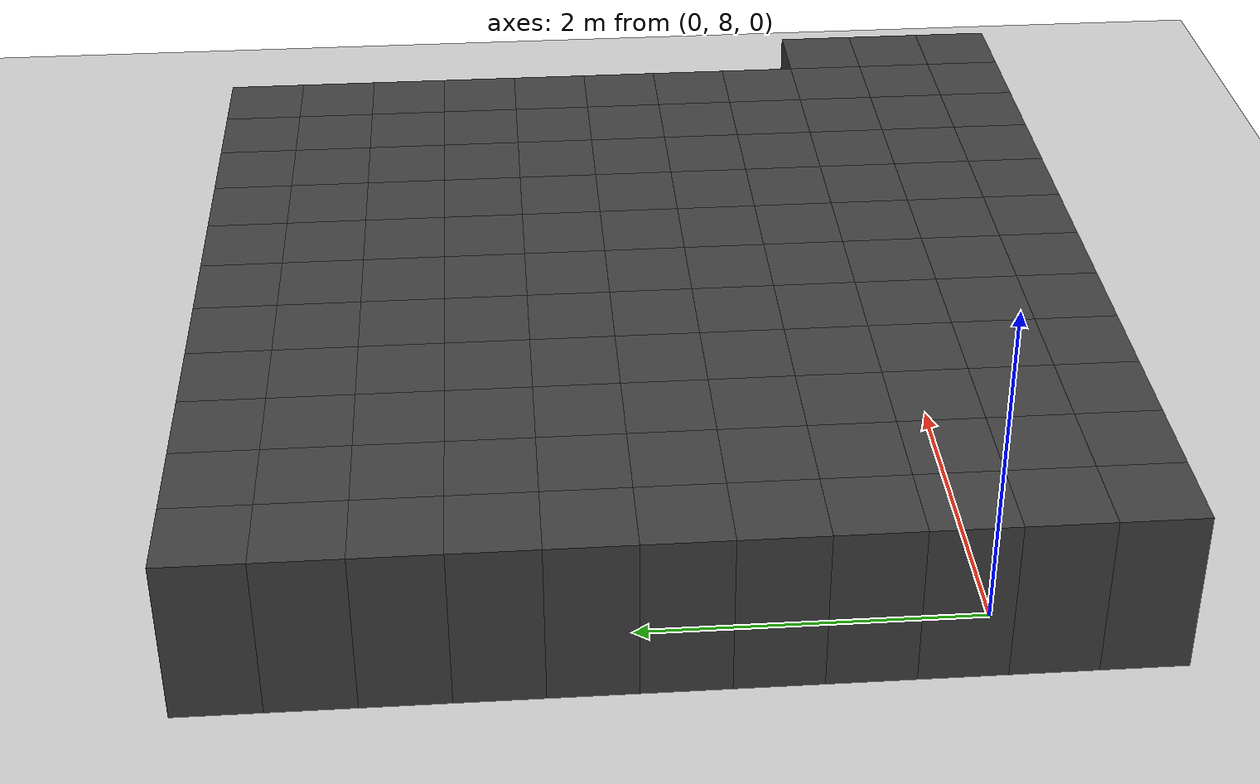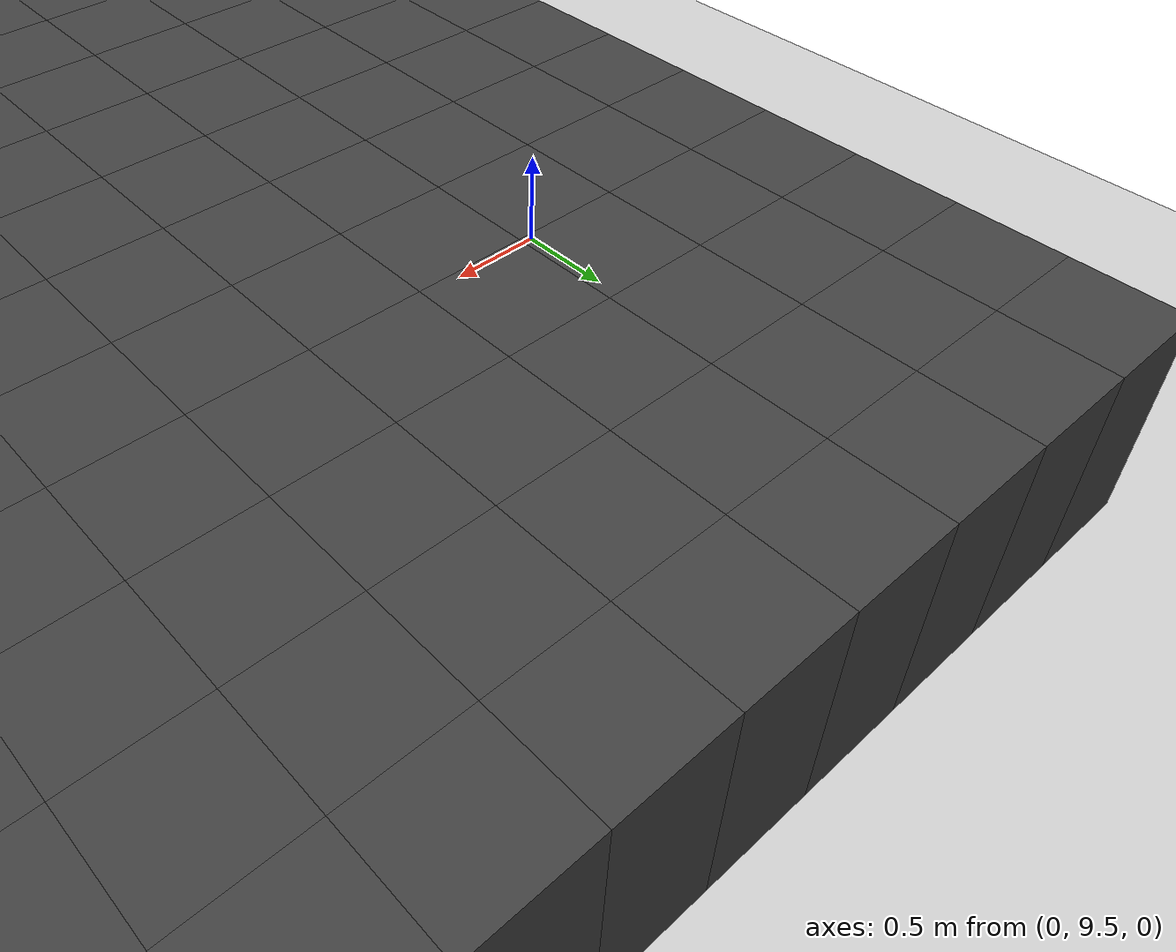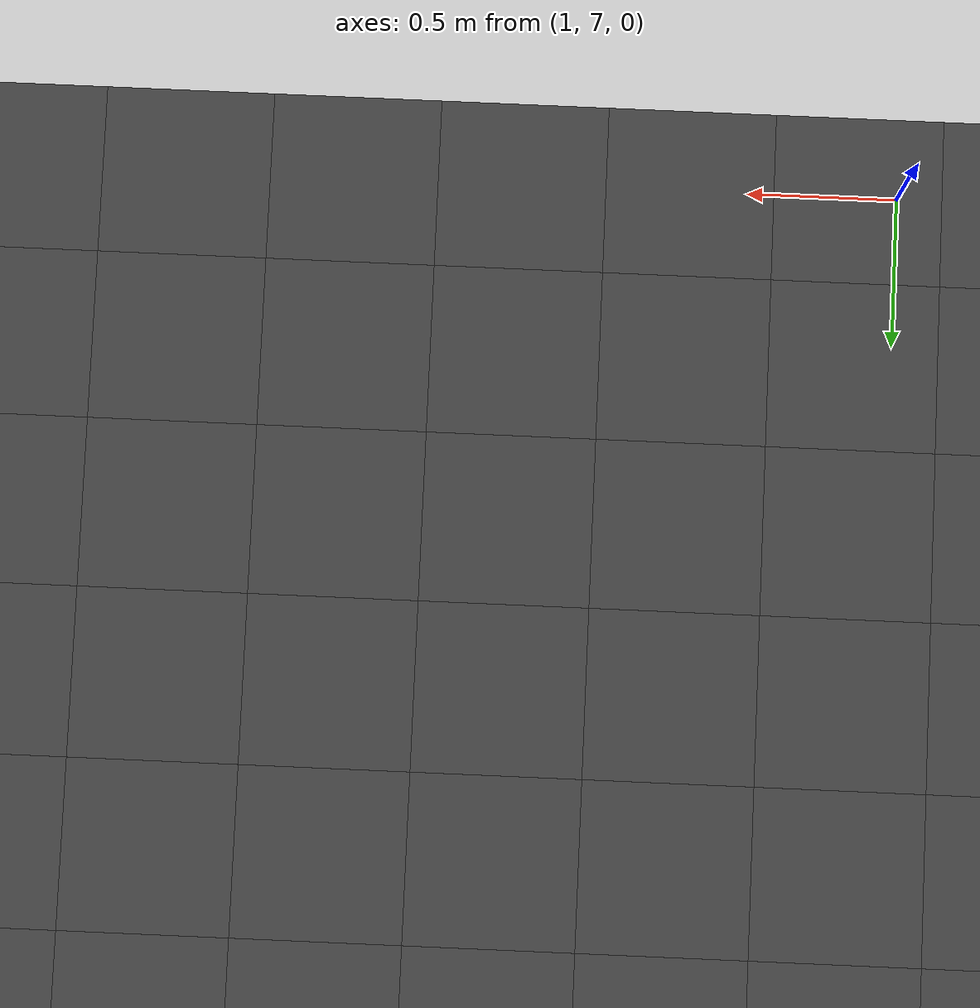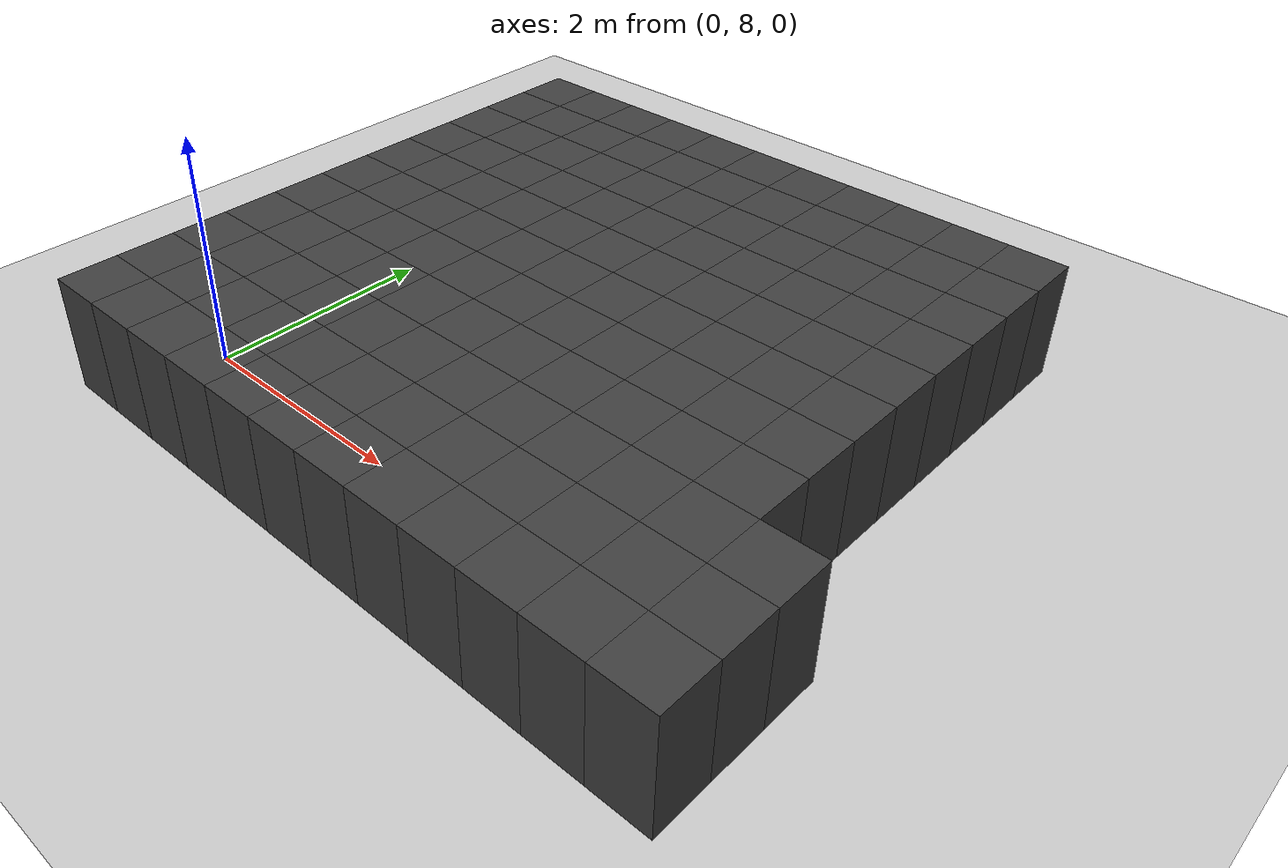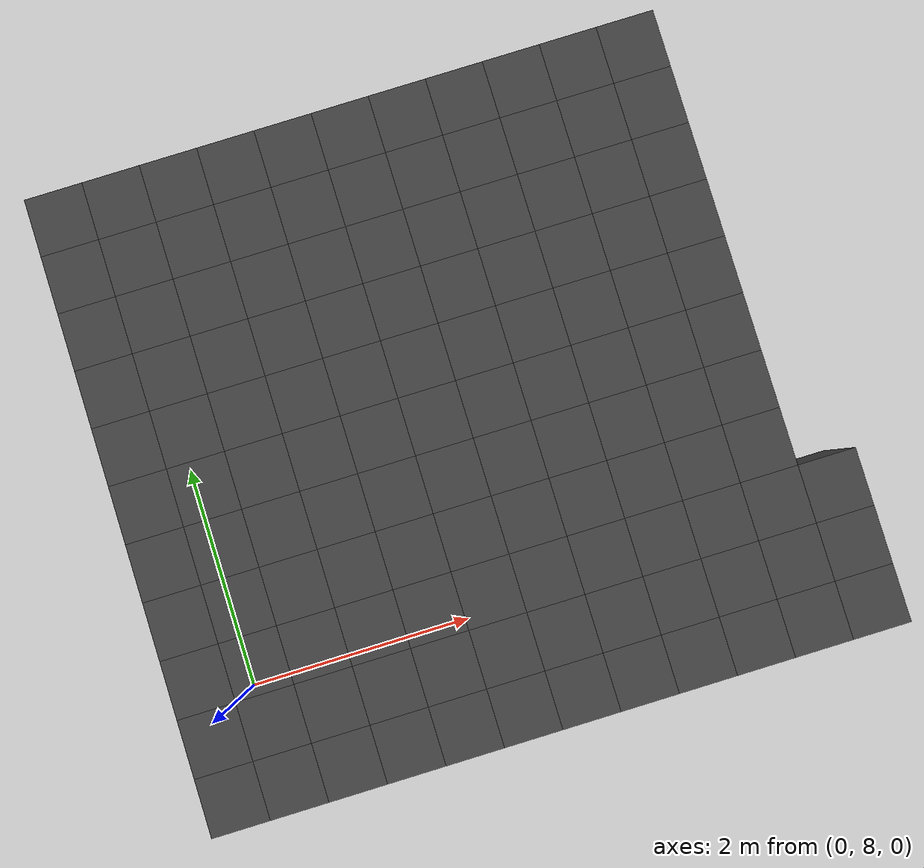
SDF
<sdf version="1.7">
 <world name="map_13364">
  <model name="ground_plane">
   <static>true</static>
   <link name="link">
    <collision name="collision">
     <geometry><plane><normal>0 0 1</normal><size>200 200</size></plane></geometry>
    </collision>
    <visual name="visual">
     <geometry><plane><normal>0 0 1</normal><size>200 200</size></plane></geometry>
     <material><ambient>0.8 0.8 0.8 1</ambient><diffuse>0.8 0.8 0.8 1</diffuse></material>
    </visual>
   </link>
  </model>
  <model name="maze_environment">
   <static>true</static>
   <link name="wall_24">
    <pose>-0.250 12.250 0.500 0 0 0</pose>
    <collision name="col"><geometry><box><size>0.5 0.5 1.0</size></box></geometry></collision>
    <visual name="vis">
     <geometry><box><size>0.5 0.5 1.0</size></box></geometry>
     <material><ambient>0.15 0.15 0.15 1</ambient><diffuse>0.25 0.25 0.25 1</diffuse></material>
    </visual>
   </link>
   <link name="wall_25">
    <pose>0.250 12.250 0.500 0 0 0</pose>
    <collision name="col"><geometry><box><size>0.5 0.5 1.0</size></box></geometry></collision>
    <visual name="vis">
     <geometry><box><size>0.5 0.5 1.0</size></box></geometry>
     <material><ambient>0.15 0.15 0.15 1</ambient><diffuse>0.25 0.25 0.25 1</diffuse></material>
    </visual>
   </link>
   <link name="wall_26">
    <pose>0.750 12.250 0.500 0 0 0</pose>
    <collision name="col"><geometry><box><size>0.5 0.5 1.0</size></box></geometry></collision>
    <visual name="vis">
     <geometry><box><size>0.5 0.5 1.0</size></box></geometry>
     <material><ambient>0.15 0.15 0.15 1</ambient><diffuse>0.25 0.25 0.25 1</diffuse></material>
    </visual>
   </link>
   <link name="wall_27">
    <pose>1.250 12.250 0.500 0 0 0</pose>
    <collision name="col"><geometry><box><size>0.5 0.5 1.0</size></box></geometry></collision>
    <visual name="vis">
     <geometry><box><size>0.5 0.5 1.0</size></box></geometry>
     <material><ambient>0.15 0.15 0.15 1</ambient><diffuse>0.25 0.25 0.25 1</diffuse></material>
    </visual>
   </link>
   <link name="wall_28">
    <pose>1.750 12.250 0.500 0 0 0</pose>
    <collision name="col"><geometry><box><size>0.5 0.5 1.0</size></box></geometry></collision>
    <visual name="vis">
     <geometry><box><size>0.5 0.5 1.0</size></box></geometry>
     <material><ambient>0.15 0.15 0.15 1</ambient><diffuse>0.25 0.25 0.25 1</diffuse></material>
    </visual>
   </link>
   <link name="wall_29">
    <pose>2.250 12.250 0.500 0 0 0</pose>
    <collision name="col"><geometry><box><size>0.5 0.5 1.0</size></box></geometry></collision>
    <visual name="vis">
     <geometry><box><size>0.5 0.5 1.0</size></box></geometry>
     <material><ambient>0.15 0.15 0.15 1</ambient><diffuse>0.25 0.25 0.25 1</diffuse></material>
    </visual>
   </link>
   <link name="wall_30">
    <pose>2.750 12.250 0.500 0 0 0</pose>
    <collision name="col"><geometry><box><size>0.5 0.5 1.0</size></box></geometry></collision>
    <visual name="vis">
     <geometry><box><size>0.5 0.5 1.0</size></box></geometry>
     <material><ambient>0.15 0.15 0.15 1</ambient><diffuse>0.25 0.25 0.25 1</diffuse></material>
    </visual>
   </link>
   <link name="wall_31">
    <pose>3.250 12.250 0.500 0 0 0</pose>
    <collision name="col"><geometry><box><size>0.5 0.5 1.0</size></box></geometry></collision>
    <visual name="vis">
     <geometry><box><size>0.5 0.5 1.0</size></box></geometry>
     <material><ambient>0.15 0.15 0.15 1</ambient><diffuse>0.25 0.25 0.25 1</diffuse></material>
    </visual>
   </link>
   <link name="wall_32">
    <pose>3.750 12.250 0.500 0 0 0</pose>
    <collision name="col"><geometry><box><size>0.5 0.5 1.0</size></box></geometry></collision>
    <visual name="vis">
     <geometry><box><size>0.5 0.5 1.0</size></box></geometry>
     <material><ambient>0.15 0.15 0.15 1</ambient><diffuse>0.25 0.25 0.25 1</diffuse></material>
    </visual>
   </link>
   <link name="wall_33">
    <pose>4.250 12.250 0.500 0 0 0</pose>
    <collision name="col"><geometry><box><size>0.5 0.5 1.0</size></box></geometry></collision>
    <visual name="vis">
     <geometry><box><size>0.5 0.5 1.0</size></box></geometry>
     <material><ambient>0.15 0.15 0.15 1</ambient><diffuse>0.25 0.25 0.25 1</diffuse></material>
    </visual>
   </link>
   <link name="wall_34">
    <pose>4.750 12.250 0.500 0 0 0</pose>
    <collision name="col"><geometry><box><size>0.5 0.5 1.0</size></box></geometry></collision>
    <visual name="vis">
     <geometry><box><size>0.5 0.5 1.0</size></box></geometry>
     <material><ambient>0.15 0.15 0.15 1</ambient><diffuse>0.25 0.25 0.25 1</diffuse></material>
    </visual>
   </link>
   <link name="wall_71">
    <pose>-0.250 11.750 0.500 0 0 0</pose>
    <collision name="col"><geometry><box><size>0.5 0.5 1.0</size></box></geometry></collision>
    <visual name="vis">
     <geometry><box><size>0.5 0.5 1.0</size></box></geometry>
     <material><ambient>0.15 0.15 0.15 1</ambient><diffuse>0.25 0.25 0.25 1</diffuse></material>
    </visual>
   </link>
   <link name="wall_72">
    <pose>0.250 11.750 0.500 0 0 0</pose>
    <collision name="col"><geometry><box><size>0.5 0.5 1.0</size></box></geometry></collision>
    <visual name="vis">
     <geometry><box><size>0.5 0.5 1.0</size></box></geometry>
     <material><ambient>0.15 0.15 0.15 1</ambient><diffuse>0.25 0.25 0.25 1</diffuse></material>
    </visual>
   </link>
   <link name="wall_73">
    <pose>0.750 11.750 0.500 0 0 0</pose>
    <collision name="col"><geometry><box><size>0.5 0.5 1.0</size></box></geometry></collision>
    <visual name="vis">
     <geometry><box><size>0.5 0.5 1.0</size></box></geometry>
     <material><ambient>0.15 0.15 0.15 1</ambient><diffuse>0.25 0.25 0.25 1</diffuse></material>
    </visual>
   </link>
   <link name="wall_74">
    <pose>1.250 11.750 0.500 0 0 0</pose>
    <collision name="col"><geometry><box><size>0.5 0.5 1.0</size></box></geometry></collision>
    <visual name="vis">
     <geometry><box><size>0.5 0.5 1.0</size></box></geometry>
     <material><ambient>0.15 0.15 0.15 1</ambient><diffuse>0.25 0.25 0.25 1</diffuse></material>
    </visual>
   </link>
   <link name="wall_75">
    <pose>1.750 11.750 0.500 0 0 0</pose>
    <collision name="col"><geometry><box><size>0.5 0.5 1.0</size></box></geometry></collision>
    <visual name="vis">
     <geometry><box><size>0.5 0.5 1.0</size></box></geometry>
     <material><ambient>0.15 0.15 0.15 1</ambient><diffuse>0.25 0.25 0.25 1</diffuse></material>
    </visual>
   </link>
   <link name="wall_76">
    <pose>2.250 11.750 0.500 0 0 0</pose>
    <collision name="col"><geometry><box><size>0.5 0.5 1.0</size></box></geometry></collision>
    <visual name="vis">
     <geometry><box><size>0.5 0.5 1.0</size></box></geometry>
     <material><ambient>0.15 0.15 0.15 1</ambient><diffuse>0.25 0.25 0.25 1</diffuse></material>
    </visual>
   </link>
   <link name="wall_77">
    <pose>2.750 11.750 0.500 0 0 0</pose>
    <collision name="col"><geometry><box><size>0.5 0.5 1.0</size></box></geometry></collision>
    <visual name="vis">
     <geometry><box><size>0.5 0.5 1.0</size></box></geometry>
     <material><ambient>0.15 0.15 0.15 1</ambient><diffuse>0.25 0.25 0.25 1</diffuse></material>
    </visual>
   </link>
   <link name="wall_78">
    <pose>3.250 11.750 0.500 0 0 0</pose>
    <collision name="col"><geometry><box><size>0.5 0.5 1.0</size></box></geometry></collision>
    <visual name="vis">
     <geometry><box><size>0.5 0.5 1.0</size></box></geometry>
     <material><ambient>0.15 0.15 0.15 1</ambient><diffuse>0.25 0.25 0.25 1</diffuse></material>
    </visual>
   </link>
   <link name="wall_79">
    <pose>3.750 11.750 0.500 0 0 0</pose>
    <collision name="col"><geometry><box><size>0.5 0.5 1.0</size></box></geometry></collision>
    <visual name="vis">
     <geometry><box><size>0.5 0.5 1.0</size></box></geometry>
     <material><ambient>0.15 0.15 0.15 1</ambient><diffuse>0.25 0.25 0.25 1</diffuse></material>
    </visual>
   </link>
   <link name="wall_80">
    <pose>4.250 11.750 0.500 0 0 0</pose>
    <collision name="col"><geometry><box><size>0.5 0.5 1.0</size></box></geometry></collision>
    <visual name="vis">
     <geometry><box><size>0.5 0.5 1.0</size></box></geometry>
     <material><ambient>0.15 0.15 0.15 1</ambient><diffuse>0.25 0.25 0.25 1</diffuse></material>
    </visual>
   </link>
   <link name="wall_81">
    <pose>4.750 11.750 0.500 0 0 0</pose>
    <collision name="col"><geometry><box><size>0.5 0.5 1.0</size></box></geometry></collision>
    <visual name="vis">
     <geometry><box><size>0.5 0.5 1.0</size></box></geometry>
     <material><ambient>0.15 0.15 0.15 1</ambient><diffuse>0.25 0.25 0.25 1</diffuse></material>
    </visual>
   </link>
   <link name="wall_118">
    <pose>-0.250 11.250 0.500 0 0 0</pose>
    <collision name="col"><geometry><box><size>0.5 0.5 1.0</size></box></geometry></collision>
    <visual name="vis">
     <geometry><box><size>0.5 0.5 1.0</size></box></geometry>
     <material><ambient>0.15 0.15 0.15 1</ambient><diffuse>0.25 0.25 0.25 1</diffuse></material>
    </visual>
   </link>
   <link name="wall_119">
    <pose>0.250 11.250 0.500 0 0 0</pose>
    <collision name="col"><geometry><box><size>0.5 0.5 1.0</size></box></geometry></collision>
    <visual name="vis">
     <geometry><box><size>0.5 0.5 1.0</size></box></geometry>
     <material><ambient>0.15 0.15 0.15 1</ambient><diffuse>0.25 0.25 0.25 1</diffuse></material>
    </visual>
   </link>
   <link name="wall_120">
    <pose>0.750 11.250 0.500 0 0 0</pose>
    <collision name="col"><geometry><box><size>0.5 0.5 1.0</size></box></geometry></collision>
    <visual name="vis">
     <geometry><box><size>0.5 0.5 1.0</size></box></geometry>
     <material><ambient>0.15 0.15 0.15 1</ambient><diffuse>0.25 0.25 0.25 1</diffuse></material>
    </visual>
   </link>
   <link name="wall_121">
    <pose>1.250 11.250 0.500 0 0 0</pose>
    <collision name="col"><geometry><box><size>0.5 0.5 1.0</size></box></geometry></collision>
    <visual name="vis">
     <geometry><box><size>0.5 0.5 1.0</size></box></geometry>
     <material><ambient>0.15 0.15 0.15 1</ambient><diffuse>0.25 0.25 0.25 1</diffuse></material>
    </visual>
   </link>
   <link name="wall_122">
    <pose>1.750 11.250 0.500 0 0 0</pose>
    <collision name="col"><geometry><box><size>0.5 0.5 1.0</size></box></geometry></collision>
    <visual name="vis">
     <geometry><box><size>0.5 0.5 1.0</size></box></geometry>
     <material><ambient>0.15 0.15 0.15 1</ambient><diffuse>0.25 0.25 0.25 1</diffuse></material>
    </visual>
   </link>
   <link name="wall_123">
    <pose>2.250 11.250 0.500 0 0 0</pose>
    <collision name="col"><geometry><box><size>0.5 0.5 1.0</size></box></geometry></collision>
    <visual name="vis">
     <geometry><box><size>0.5 0.5 1.0</size></box></geometry>
     <material><ambient>0.15 0.15 0.15 1</ambient><diffuse>0.25 0.25 0.25 1</diffuse></material>
    </visual>
   </link>
   <link name="wall_124">
    <pose>2.750 11.250 0.500 0 0 0</pose>
    <collision name="col"><geometry><box><size>0.5 0.5 1.0</size></box></geometry></collision>
    <visual name="vis">
     <geometry><box><size>0.5 0.5 1.0</size></box></geometry>
     <material><ambient>0.15 0.15 0.15 1</ambient><diffuse>0.25 0.25 0.25 1</diffuse></material>
    </visual>
   </link>
   <link name="wall_125">
    <pose>3.250 11.250 0.500 0 0 0</pose>
    <collision name="col"><geometry><box><size>0.5 0.5 1.0</size></box></geometry></collision>
    <visual name="vis">
     <geometry><box><size>0.5 0.5 1.0</size></box></geometry>
     <material><ambient>0.15 0.15 0.15 1</ambient><diffuse>0.25 0.25 0.25 1</diffuse></material>
    </visual>
   </link>
   <link name="wall_126">
    <pose>3.750 11.250 0.500 0 0 0</pose>
    <collision name="col"><geometry><box><size>0.5 0.5 1.0</size></box></geometry></collision>
    <visual name="vis">
     <geometry><box><size>0.5 0.5 1.0</size></box></geometry>
     <material><ambient>0.15 0.15 0.15 1</ambient><diffuse>0.25 0.25 0.25 1</diffuse></material>
    </visual>
   </link>
   <link name="wall_127">
    <pose>4.250 11.250 0.500 0 0 0</pose>
    <collision name="col"><geometry><box><size>0.5 0.5 1.0</size></box></geometry></collision>
    <visual name="vis">
     <geometry><box><size>0.5 0.5 1.0</size></box></geometry>
     <material><ambient>0.15 0.15 0.15 1</ambient><diffuse>0.25 0.25 0.25 1</diffuse></material>
    </visual>
   </link>
   <link name="wall_128">
    <pose>4.750 11.250 0.500 0 0 0</pose>
    <collision name="col"><geometry><box><size>0.5 0.5 1.0</size></box></geometry></collision>
    <visual name="vis">
     <geometry><box><size>0.5 0.5 1.0</size></box></geometry>
     <material><ambient>0.15 0.15 0.15 1</ambient><diffuse>0.25 0.25 0.25 1</diffuse></material>
    </visual>
   </link>
   <link name="wall_165">
    <pose>-0.250 10.750 0.500 0 0 0</pose>
    <collision name="col"><geometry><box><size>0.5 0.5 1.0</size></box></geometry></collision>
    <visual name="vis">
     <geometry><box><size>0.5 0.5 1.0</size></box></geometry>
     <material><ambient>0.15 0.15 0.15 1</ambient><diffuse>0.25 0.25 0.25 1</diffuse></material>
    </visual>
   </link>
   <link name="wall_166">
    <pose>0.250 10.750 0.500 0 0 0</pose>
    <collision name="col"><geometry><box><size>0.5 0.5 1.0</size></box></geometry></collision>
    <visual name="vis">
     <geometry><box><size>0.5 0.5 1.0</size></box></geometry>
     <material><ambient>0.15 0.15 0.15 1</ambient><diffuse>0.25 0.25 0.25 1</diffuse></material>
    </visual>
   </link>
   <link name="wall_167">
    <pose>0.750 10.750 0.500 0 0 0</pose>
    <collision name="col"><geometry><box><size>0.5 0.5 1.0</size></box></geometry></collision>
    <visual name="vis">
     <geometry><box><size>0.5 0.5 1.0</size></box></geometry>
     <material><ambient>0.15 0.15 0.15 1</ambient><diffuse>0.25 0.25 0.25 1</diffuse></material>
    </visual>
   </link>
   <link name="wall_168">
    <pose>1.250 10.750 0.500 0 0 0</pose>
    <collision name="col"><geometry><box><size>0.5 0.5 1.0</size></box></geometry></collision>
    <visual name="vis">
     <geometry><box><size>0.5 0.5 1.0</size></box></geometry>
     <material><ambient>0.15 0.15 0.15 1</ambient><diffuse>0.25 0.25 0.25 1</diffuse></material>
    </visual>
   </link>
   <link name="wall_169">
    <pose>1.750 10.750 0.500 0 0 0</pose>
    <collision name="col"><geometry><box><size>0.5 0.5 1.0</size></box></geometry></collision>
    <visual name="vis">
     <geometry><box><size>0.5 0.5 1.0</size></box></geometry>
     <material><ambient>0.15 0.15 0.15 1</ambient><diffuse>0.25 0.25 0.25 1</diffuse></material>
    </visual>
   </link>
   <link name="wall_170">
    <pose>2.250 10.750 0.500 0 0 0</pose>
    <collision name="col"><geometry><box><size>0.5 0.5 1.0</size></box></geometry></collision>
    <visual name="vis">
     <geometry><box><size>0.5 0.5 1.0</size></box></geometry>
     <material><ambient>0.15 0.15 0.15 1</ambient><diffuse>0.25 0.25 0.25 1</diffuse></material>
    </visual>
   </link>
   <link name="wall_171">
    <pose>2.750 10.750 0.500 0 0 0</pose>
    <collision name="col"><geometry><box><size>0.5 0.5 1.0</size></box></geometry></collision>
    <visual name="vis">
     <geometry><box><size>0.5 0.5 1.0</size></box></geometry>
     <material><ambient>0.15 0.15 0.15 1</ambient><diffuse>0.25 0.25 0.25 1</diffuse></material>
    </visual>
   </link>
   <link name="wall_172">
    <pose>3.250 10.750 0.500 0 0 0</pose>
    <collision name="col"><geometry><box><size>0.5 0.5 1.0</size></box></geometry></collision>
    <visual name="vis">
     <geometry><box><size>0.5 0.5 1.0</size></box></geometry>
     <material><ambient>0.15 0.15 0.15 1</ambient><diffuse>0.25 0.25 0.25 1</diffuse></material>
    </visual>
   </link>
   <link name="wall_173">
    <pose>3.750 10.750 0.500 0 0 0</pose>
    <collision name="col"><geometry><box><size>0.5 0.5 1.0</size></box></geometry></collision>
    <visual name="vis">
     <geometry><box><size>0.5 0.5 1.0</size></box></geometry>
     <material><ambient>0.15 0.15 0.15 1</ambient><diffuse>0.25 0.25 0.25 1</diffuse></material>
    </visual>
   </link>
   <link name="wall_174">
    <pose>4.250 10.750 0.500 0 0 0</pose>
    <collision name="col"><geometry><box><size>0.5 0.5 1.0</size></box></geometry></collision>
    <visual name="vis">
     <geometry><box><size>0.5 0.5 1.0</size></box></geometry>
     <material><ambient>0.15 0.15 0.15 1</ambient><diffuse>0.25 0.25 0.25 1</diffuse></material>
    </visual>
   </link>
   <link name="wall_175">
    <pose>4.750 10.750 0.500 0 0 0</pose>
    <collision name="col"><geometry><box><size>0.5 0.5 1.0</size></box></geometry></collision>
    <visual name="vis">
     <geometry><box><size>0.5 0.5 1.0</size></box></geometry>
     <material><ambient>0.15 0.15 0.15 1</ambient><diffuse>0.25 0.25 0.25 1</diffuse></material>
    </visual>
   </link>
   <link name="wall_209">
    <pose>-0.250 10.250 0.500 0 0 0</pose>
    <collision name="col"><geometry><box><size>0.5 0.5 1.0</size></box></geometry></collision>
    <visual name="vis">
     <geometry><box><size>0.5 0.5 1.0</size></box></geometry>
     <material><ambient>0.15 0.15 0.15 1</ambient><diffuse>0.25 0.25 0.25 1</diffuse></material>
    </visual>
   </link>
   <link name="wall_210">
    <pose>0.250 10.250 0.500 0 0 0</pose>
    <collision name="col"><geometry><box><size>0.5 0.5 1.0</size></box></geometry></collision>
    <visual name="vis">
     <geometry><box><size>0.5 0.5 1.0</size></box></geometry>
     <material><ambient>0.15 0.15 0.15 1</ambient><diffuse>0.25 0.25 0.25 1</diffuse></material>
    </visual>
   </link>
   <link name="wall_211">
    <pose>0.750 10.250 0.500 0 0 0</pose>
    <collision name="col"><geometry><box><size>0.5 0.5 1.0</size></box></geometry></collision>
    <visual name="vis">
     <geometry><box><size>0.5 0.5 1.0</size></box></geometry>
     <material><ambient>0.15 0.15 0.15 1</ambient><diffuse>0.25 0.25 0.25 1</diffuse></material>
    </visual>
   </link>
   <link name="wall_212">
    <pose>1.250 10.250 0.500 0 0 0</pose>
    <collision name="col"><geometry><box><size>0.5 0.5 1.0</size></box></geometry></collision>
    <visual name="vis">
     <geometry><box><size>0.5 0.5 1.0</size></box></geometry>
     <material><ambient>0.15 0.15 0.15 1</ambient><diffuse>0.25 0.25 0.25 1</diffuse></material>
    </visual>
   </link>
   <link name="wall_213">
    <pose>1.750 10.250 0.500 0 0 0</pose>
    <collision name="col"><geometry><box><size>0.5 0.5 1.0</size></box></geometry></collision>
    <visual name="vis">
     <geometry><box><size>0.5 0.5 1.0</size></box></geometry>
     <material><ambient>0.15 0.15 0.15 1</ambient><diffuse>0.25 0.25 0.25 1</diffuse></material>
    </visual>
   </link>
   <link name="wall_214">
    <pose>2.250 10.250 0.500 0 0 0</pose>
    <collision name="col"><geometry><box><size>0.5 0.5 1.0</size></box></geometry></collision>
    <visual name="vis">
     <geometry><box><size>0.5 0.5 1.0</size></box></geometry>
     <material><ambient>0.15 0.15 0.15 1</ambient><diffuse>0.25 0.25 0.25 1</diffuse></material>
    </visual>
   </link>
   <link name="wall_215">
    <pose>2.750 10.250 0.500 0 0 0</pose>
    <collision name="col"><geometry><box><size>0.5 0.5 1.0</size></box></geometry></collision>
    <visual name="vis">
     <geometry><box><size>0.5 0.5 1.0</size></box></geometry>
     <material><ambient>0.15 0.15 0.15 1</ambient><diffuse>0.25 0.25 0.25 1</diffuse></material>
    </visual>
   </link>
   <link name="wall_216">
    <pose>3.250 10.250 0.500 0 0 0</pose>
    <collision name="col"><geometry><box><size>0.5 0.5 1.0</size></box></geometry></collision>
    <visual name="vis">
     <geometry><box><size>0.5 0.5 1.0</size></box></geometry>
     <material><ambient>0.15 0.15 0.15 1</ambient><diffuse>0.25 0.25 0.25 1</diffuse></material>
    </visual>
   </link>
   <link name="wall_217">
    <pose>3.750 10.250 0.500 0 0 0</pose>
    <collision name="col"><geometry><box><size>0.5 0.5 1.0</size></box></geometry></collision>
    <visual name="vis">
     <geometry><box><size>0.5 0.5 1.0</size></box></geometry>
     <material><ambient>0.15 0.15 0.15 1</ambient><diffuse>0.25 0.25 0.25 1</diffuse></material>
    </visual>
   </link>
   <link name="wall_218">
    <pose>4.250 10.250 0.500 0 0 0</pose>
    <collision name="col"><geometry><box><size>0.5 0.5 1.0</size></box></geometry></collision>
    <visual name="vis">
     <geometry><box><size>0.5 0.5 1.0</size></box></geometry>
     <material><ambient>0.15 0.15 0.15 1</ambient><diffuse>0.25 0.25 0.25 1</diffuse></material>
    </visual>
   </link>
   <link name="wall_219">
    <pose>4.750 10.250 0.500 0 0 0</pose>
    <collision name="col"><geometry><box><size>0.5 0.5 1.0</size></box></geometry></collision>
    <visual name="vis">
     <geometry><box><size>0.5 0.5 1.0</size></box></geometry>
     <material><ambient>0.15 0.15 0.15 1</ambient><diffuse>0.25 0.25 0.25 1</diffuse></material>
    </visual>
   </link>
   <link name="wall_253">
    <pose>-0.250 9.750 0.500 0 0 0</pose>
    <collision name="col"><geometry><box><size>0.5 0.5 1.0</size></box></geometry></collision>
    <visual name="vis">
     <geometry><box><size>0.5 0.5 1.0</size></box></geometry>
     <material><ambient>0.15 0.15 0.15 1</ambient><diffuse>0.25 0.25 0.25 1</diffuse></material>
    </visual>
   </link>
   <link name="wall_254">
    <pose>0.250 9.750 0.500 0 0 0</pose>
    <collision name="col"><geometry><box><size>0.5 0.5 1.0</size></box></geometry></collision>
    <visual name="vis">
     <geometry><box><size>0.5 0.5 1.0</size></box></geometry>
     <material><ambient>0.15 0.15 0.15 1</ambient><diffuse>0.25 0.25 0.25 1</diffuse></material>
    </visual>
   </link>
   <link name="wall_255">
    <pose>0.750 9.750 0.500 0 0 0</pose>
    <collision name="col"><geometry><box><size>0.5 0.5 1.0</size></box></geometry></collision>
    <visual name="vis">
     <geometry><box><size>0.5 0.5 1.0</size></box></geometry>
     <material><ambient>0.15 0.15 0.15 1</ambient><diffuse>0.25 0.25 0.25 1</diffuse></material>
    </visual>
   </link>
   <link name="wall_256">
    <pose>1.250 9.750 0.500 0 0 0</pose>
    <collision name="col"><geometry><box><size>0.5 0.5 1.0</size></box></geometry></collision>
    <visual name="vis">
     <geometry><box><size>0.5 0.5 1.0</size></box></geometry>
     <material><ambient>0.15 0.15 0.15 1</ambient><diffuse>0.25 0.25 0.25 1</diffuse></material>
    </visual>
   </link>
   <link name="wall_257">
    <pose>1.750 9.750 0.500 0 0 0</pose>
    <collision name="col"><geometry><box><size>0.5 0.5 1.0</size></box></geometry></collision>
    <visual name="vis">
     <geometry><box><size>0.5 0.5 1.0</size></box></geometry>
     <material><ambient>0.15 0.15 0.15 1</ambient><diffuse>0.25 0.25 0.25 1</diffuse></material>
    </visual>
   </link>
   <link name="wall_258">
    <pose>2.250 9.750 0.500 0 0 0</pose>
    <collision name="col"><geometry><box><size>0.5 0.5 1.0</size></box></geometry></collision>
    <visual name="vis">
     <geometry><box><size>0.5 0.5 1.0</size></box></geometry>
     <material><ambient>0.15 0.15 0.15 1</ambient><diffuse>0.25 0.25 0.25 1</diffuse></material>
    </visual>
   </link>
   <link name="wall_259">
    <pose>2.750 9.750 0.500 0 0 0</pose>
    <collision name="col"><geometry><box><size>0.5 0.5 1.0</size></box></geometry></collision>
    <visual name="vis">
     <geometry><box><size>0.5 0.5 1.0</size></box></geometry>
     <material><ambient>0.15 0.15 0.15 1</ambient><diffuse>0.25 0.25 0.25 1</diffuse></material>
    </visual>
   </link>
   <link name="wall_260">
    <pose>3.250 9.750 0.500 0 0 0</pose>
    <collision name="col"><geometry><box><size>0.5 0.5 1.0</size></box></geometry></collision>
    <visual name="vis">
     <geometry><box><size>0.5 0.5 1.0</size></box></geometry>
     <material><ambient>0.15 0.15 0.15 1</ambient><diffuse>0.25 0.25 0.25 1</diffuse></material>
    </visual>
   </link>
   <link name="wall_261">
    <pose>3.750 9.750 0.500 0 0 0</pose>
    <collision name="col"><geometry><box><size>0.5 0.5 1.0</size></box></geometry></collision>
    <visual name="vis">
     <geometry><box><size>0.5 0.5 1.0</size></box></geometry>
     <material><ambient>0.15 0.15 0.15 1</ambient><diffuse>0.25 0.25 0.25 1</diffuse></material>
    </visual>
   </link>
   <link name="wall_262">
    <pose>4.250 9.750 0.500 0 0 0</pose>
    <collision name="col"><geometry><box><size>0.5 0.5 1.0</size></box></geometry></collision>
    <visual name="vis">
     <geometry><box><size>0.5 0.5 1.0</size></box></geometry>
     <material><ambient>0.15 0.15 0.15 1</ambient><diffuse>0.25 0.25 0.25 1</diffuse></material>
    </visual>
   </link>
   <link name="wall_263">
    <pose>4.750 9.750 0.500 0 0 0</pose>
    <collision name="col"><geometry><box><size>0.5 0.5 1.0</size></box></geometry></collision>
    <visual name="vis">
     <geometry><box><size>0.5 0.5 1.0</size></box></geometry>
     <material><ambient>0.15 0.15 0.15 1</ambient><diffuse>0.25 0.25 0.25 1</diffuse></material>
    </visual>
   </link>
   <link name="wall_297">
    <pose>-0.250 9.250 0.500 0 0 0</pose>
    <collision name="col"><geometry><box><size>0.5 0.5 1.0</size></box></geometry></collision>
    <visual name="vis">
     <geometry><box><size>0.5 0.5 1.0</size></box></geometry>
     <material><ambient>0.15 0.15 0.15 1</ambient><diffuse>0.25 0.25 0.25 1</diffuse></material>
    </visual>
   </link>
   <link name="wall_298">
    <pose>0.250 9.250 0.500 0 0 0</pose>
    <collision name="col"><geometry><box><size>0.5 0.5 1.0</size></box></geometry></collision>
    <visual name="vis">
     <geometry><box><size>0.5 0.5 1.0</size></box></geometry>
     <material><ambient>0.15 0.15 0.15 1</ambient><diffuse>0.25 0.25 0.25 1</diffuse></material>
    </visual>
   </link>
   <link name="wall_299">
    <pose>0.750 9.250 0.500 0 0 0</pose>
    <collision name="col"><geometry><box><size>0.5 0.5 1.0</size></box></geometry></collision>
    <visual name="vis">
     <geometry><box><size>0.5 0.5 1.0</size></box></geometry>
     <material><ambient>0.15 0.15 0.15 1</ambient><diffuse>0.25 0.25 0.25 1</diffuse></material>
    </visual>
   </link>
   <link name="wall_300">
    <pose>1.250 9.250 0.500 0 0 0</pose>
    <collision name="col"><geometry><box><size>0.5 0.5 1.0</size></box></geometry></collision>
    <visual name="vis">
     <geometry><box><size>0.5 0.5 1.0</size></box></geometry>
     <material><ambient>0.15 0.15 0.15 1</ambient><diffuse>0.25 0.25 0.25 1</diffuse></material>
    </visual>
   </link>
   <link name="wall_301">
    <pose>1.750 9.250 0.500 0 0 0</pose>
    <collision name="col"><geometry><box><size>0.5 0.5 1.0</size></box></geometry></collision>
    <visual name="vis">
     <geometry><box><size>0.5 0.5 1.0</size></box></geometry>
     <material><ambient>0.15 0.15 0.15 1</ambient><diffuse>0.25 0.25 0.25 1</diffuse></material>
    </visual>
   </link>
   <link name="wall_302">
    <pose>2.250 9.250 0.500 0 0 0</pose>
    <collision name="col"><geometry><box><size>0.5 0.5 1.0</size></box></geometry></collision>
    <visual name="vis">
     <geometry><box><size>0.5 0.5 1.0</size></box></geometry>
     <material><ambient>0.15 0.15 0.15 1</ambient><diffuse>0.25 0.25 0.25 1</diffuse></material>
    </visual>
   </link>
   <link name="wall_303">
    <pose>2.750 9.250 0.500 0 0 0</pose>
    <collision name="col"><geometry><box><size>0.5 0.5 1.0</size></box></geometry></collision>
    <visual name="vis">
     <geometry><box><size>0.5 0.5 1.0</size></box></geometry>
     <material><ambient>0.15 0.15 0.15 1</ambient><diffuse>0.25 0.25 0.25 1</diffuse></material>
    </visual>
   </link>
   <link name="wall_304">
    <pose>3.250 9.250 0.500 0 0 0</pose>
    <collision name="col"><geometry><box><size>0.5 0.5 1.0</size></box></geometry></collision>
    <visual name="vis">
     <geometry><box><size>0.5 0.5 1.0</size></box></geometry>
     <material><ambient>0.15 0.15 0.15 1</ambient><diffuse>0.25 0.25 0.25 1</diffuse></material>
    </visual>
   </link>
   <link name="wall_305">
    <pose>3.750 9.250 0.500 0 0 0</pose>
    <collision name="col"><geometry><box><size>0.5 0.5 1.0</size></box></geometry></collision>
    <visual name="vis">
     <geometry><box><size>0.5 0.5 1.0</size></box></geometry>
     <material><ambient>0.15 0.15 0.15 1</ambient><diffuse>0.25 0.25 0.25 1</diffuse></material>
    </visual>
   </link>
   <link name="wall_306">
    <pose>4.250 9.250 0.500 0 0 0</pose>
    <collision name="col"><geometry><box><size>0.5 0.5 1.0</size></box></geometry></collision>
    <visual name="vis">
     <geometry><box><size>0.5 0.5 1.0</size></box></geometry>
     <material><ambient>0.15 0.15 0.15 1</ambient><diffuse>0.25 0.25 0.25 1</diffuse></material>
    </visual>
   </link>
   <link name="wall_307">
    <pose>4.750 9.250 0.500 0 0 0</pose>
    <collision name="col"><geometry><box><size>0.5 0.5 1.0</size></box></geometry></collision>
    <visual name="vis">
     <geometry><box><size>0.5 0.5 1.0</size></box></geometry>
     <material><ambient>0.15 0.15 0.15 1</ambient><diffuse>0.25 0.25 0.25 1</diffuse></material>
    </visual>
   </link>
   <link name="wall_341">
    <pose>-0.250 8.750 0.500 0 0 0</pose>
    <collision name="col"><geometry><box><size>0.5 0.5 1.0</size></box></geometry></collision>
    <visual name="vis">
     <geometry><box><size>0.5 0.5 1.0</size></box></geometry>
     <material><ambient>0.15 0.15 0.15 1</ambient><diffuse>0.25 0.25 0.25 1</diffuse></material>
    </visual>
   </link>
   <link name="wall_342">
    <pose>0.250 8.750 0.500 0 0 0</pose>
    <collision name="col"><geometry><box><size>0.5 0.5 1.0</size></box></geometry></collision>
    <visual name="vis">
     <geometry><box><size>0.5 0.5 1.0</size></box></geometry>
     <material><ambient>0.15 0.15 0.15 1</ambient><diffuse>0.25 0.25 0.25 1</diffuse></material>
    </visual>
   </link>
   <link name="wall_343">
    <pose>0.750 8.750 0.500 0 0 0</pose>
    <collision name="col"><geometry><box><size>0.5 0.5 1.0</size></box></geometry></collision>
    <visual name="vis">
     <geometry><box><size>0.5 0.5 1.0</size></box></geometry>
     <material><ambient>0.15 0.15 0.15 1</ambient><diffuse>0.25 0.25 0.25 1</diffuse></material>
    </visual>
   </link>
   <link name="wall_344">
    <pose>1.250 8.750 0.500 0 0 0</pose>
    <collision name="col"><geometry><box><size>0.5 0.5 1.0</size></box></geometry></collision>
    <visual name="vis">
     <geometry><box><size>0.5 0.5 1.0</size></box></geometry>
     <material><ambient>0.15 0.15 0.15 1</ambient><diffuse>0.25 0.25 0.25 1</diffuse></material>
    </visual>
   </link>
   <link name="wall_345">
    <pose>1.750 8.750 0.500 0 0 0</pose>
    <collision name="col"><geometry><box><size>0.5 0.5 1.0</size></box></geometry></collision>
    <visual name="vis">
     <geometry><box><size>0.5 0.5 1.0</size></box></geometry>
     <material><ambient>0.15 0.15 0.15 1</ambient><diffuse>0.25 0.25 0.25 1</diffuse></material>
    </visual>
   </link>
   <link name="wall_346">
    <pose>2.250 8.750 0.500 0 0 0</pose>
    <collision name="col"><geometry><box><size>0.5 0.5 1.0</size></box></geometry></collision>
    <visual name="vis">
     <geometry><box><size>0.5 0.5 1.0</size></box></geometry>
     <material><ambient>0.15 0.15 0.15 1</ambient><diffuse>0.25 0.25 0.25 1</diffuse></material>
    </visual>
   </link>
   <link name="wall_347">
    <pose>2.750 8.750 0.500 0 0 0</pose>
    <collision name="col"><geometry><box><size>0.5 0.5 1.0</size></box></geometry></collision>
    <visual name="vis">
     <geometry><box><size>0.5 0.5 1.0</size></box></geometry>
     <material><ambient>0.15 0.15 0.15 1</ambient><diffuse>0.25 0.25 0.25 1</diffuse></material>
    </visual>
   </link>
   <link name="wall_348">
    <pose>3.250 8.750 0.500 0 0 0</pose>
    <collision name="col"><geometry><box><size>0.5 0.5 1.0</size></box></geometry></collision>
    <visual name="vis">
     <geometry><box><size>0.5 0.5 1.0</size></box></geometry>
     <material><ambient>0.15 0.15 0.15 1</ambient><diffuse>0.25 0.25 0.25 1</diffuse></material>
    </visual>
   </link>
   <link name="wall_349">
    <pose>3.750 8.750 0.500 0 0 0</pose>
    <collision name="col"><geometry><box><size>0.5 0.5 1.0</size></box></geometry></collision>
    <visual name="vis">
     <geometry><box><size>0.5 0.5 1.0</size></box></geometry>
     <material><ambient>0.15 0.15 0.15 1</ambient><diffuse>0.25 0.25 0.25 1</diffuse></material>
    </visual>
   </link>
   <link name="wall_350">
    <pose>4.250 8.750 0.500 0 0 0</pose>
    <collision name="col"><geometry><box><size>0.5 0.5 1.0</size></box></geometry></collision>
    <visual name="vis">
     <geometry><box><size>0.5 0.5 1.0</size></box></geometry>
     <material><ambient>0.15 0.15 0.15 1</ambient><diffuse>0.25 0.25 0.25 1</diffuse></material>
    </visual>
   </link>
   <link name="wall_351">
    <pose>4.750 8.750 0.500 0 0 0</pose>
    <collision name="col"><geometry><box><size>0.5 0.5 1.0</size></box></geometry></collision>
    <visual name="vis">
     <geometry><box><size>0.5 0.5 1.0</size></box></geometry>
     <material><ambient>0.15 0.15 0.15 1</ambient><diffuse>0.25 0.25 0.25 1</diffuse></material>
    </visual>
   </link>
   <link name="wall_385">
    <pose>-0.250 8.250 0.500 0 0 0</pose>
    <collision name="col"><geometry><box><size>0.5 0.5 1.0</size></box></geometry></collision>
    <visual name="vis">
     <geometry><box><size>0.5 0.5 1.0</size></box></geometry>
     <material><ambient>0.15 0.15 0.15 1</ambient><diffuse>0.25 0.25 0.25 1</diffuse></material>
    </visual>
   </link>
   <link name="wall_386">
    <pose>0.250 8.250 0.500 0 0 0</pose>
    <collision name="col"><geometry><box><size>0.5 0.5 1.0</size></box></geometry></collision>
    <visual name="vis">
     <geometry><box><size>0.5 0.5 1.0</size></box></geometry>
     <material><ambient>0.15 0.15 0.15 1</ambient><diffuse>0.25 0.25 0.25 1</diffuse></material>
    </visual>
   </link>
   <link name="wall_387">
    <pose>0.750 8.250 0.500 0 0 0</pose>
    <collision name="col"><geometry><box><size>0.5 0.5 1.0</size></box></geometry></collision>
    <visual name="vis">
     <geometry><box><size>0.5 0.5 1.0</size></box></geometry>
     <material><ambient>0.15 0.15 0.15 1</ambient><diffuse>0.25 0.25 0.25 1</diffuse></material>
    </visual>
   </link>
   <link name="wall_388">
    <pose>1.250 8.250 0.500 0 0 0</pose>
    <collision name="col"><geometry><box><size>0.5 0.5 1.0</size></box></geometry></collision>
    <visual name="vis">
     <geometry><box><size>0.5 0.5 1.0</size></box></geometry>
     <material><ambient>0.15 0.15 0.15 1</ambient><diffuse>0.25 0.25 0.25 1</diffuse></material>
    </visual>
   </link>
   <link name="wall_389">
    <pose>1.750 8.250 0.500 0 0 0</pose>
    <collision name="col"><geometry><box><size>0.5 0.5 1.0</size></box></geometry></collision>
    <visual name="vis">
     <geometry><box><size>0.5 0.5 1.0</size></box></geometry>
     <material><ambient>0.15 0.15 0.15 1</ambient><diffuse>0.25 0.25 0.25 1</diffuse></material>
    </visual>
   </link>
   <link name="wall_390">
    <pose>2.250 8.250 0.500 0 0 0</pose>
    <collision name="col"><geometry><box><size>0.5 0.5 1.0</size></box></geometry></collision>
    <visual name="vis">
     <geometry><box><size>0.5 0.5 1.0</size></box></geometry>
     <material><ambient>0.15 0.15 0.15 1</ambient><diffuse>0.25 0.25 0.25 1</diffuse></material>
    </visual>
   </link>
   <link name="wall_391">
    <pose>2.750 8.250 0.500 0 0 0</pose>
    <collision name="col"><geometry><box><size>0.5 0.5 1.0</size></box></geometry></collision>
    <visual name="vis">
     <geometry><box><size>0.5 0.5 1.0</size></box></geometry>
     <material><ambient>0.15 0.15 0.15 1</ambient><diffuse>0.25 0.25 0.25 1</diffuse></material>
    </visual>
   </link>
   <link name="wall_392">
    <pose>3.250 8.250 0.500 0 0 0</pose>
    <collision name="col"><geometry><box><size>0.5 0.5 1.0</size></box></geometry></collision>
    <visual name="vis">
     <geometry><box><size>0.5 0.5 1.0</size></box></geometry>
     <material><ambient>0.15 0.15 0.15 1</ambient><diffuse>0.25 0.25 0.25 1</diffuse></material>
    </visual>
   </link>
   <link name="wall_393">
    <pose>3.750 8.250 0.500 0 0 0</pose>
    <collision name="col"><geometry><box><size>0.5 0.5 1.0</size></box></geometry></collision>
    <visual name="vis">
     <geometry><box><size>0.5 0.5 1.0</size></box></geometry>
     <material><ambient>0.15 0.15 0.15 1</ambient><diffuse>0.25 0.25 0.25 1</diffuse></material>
    </visual>
   </link>
   <link name="wall_394">
    <pose>4.250 8.250 0.500 0 0 0</pose>
    <collision name="col"><geometry><box><size>0.5 0.5 1.0</size></box></geometry></collision>
    <visual name="vis">
     <geometry><box><size>0.5 0.5 1.0</size></box></geometry>
     <material><ambient>0.15 0.15 0.15 1</ambient><diffuse>0.25 0.25 0.25 1</diffuse></material>
    </visual>
   </link>
   <link name="wall_395">
    <pose>4.750 8.250 0.500 0 0 0</pose>
    <collision name="col"><geometry><box><size>0.5 0.5 1.0</size></box></geometry></collision>
    <visual name="vis">
     <geometry><box><size>0.5 0.5 1.0</size></box></geometry>
     <material><ambient>0.15 0.15 0.15 1</ambient><diffuse>0.25 0.25 0.25 1</diffuse></material>
    </visual>
   </link>
   <link name="wall_396">
    <pose>5.250 8.250 0.500 0 0 0</pose>
    <collision name="col"><geometry><box><size>0.5 0.5 1.0</size></box></geometry></collision>
    <visual name="vis">
     <geometry><box><size>0.5 0.5 1.0</size></box></geometry>
     <material><ambient>0.15 0.15 0.15 1</ambient><diffuse>0.25 0.25 0.25 1</diffuse></material>
    </visual>
   </link>
   <link name="wall_434">
    <pose>-0.250 7.750 0.500 0 0 0</pose>
    <collision name="col"><geometry><box><size>0.5 0.5 1.0</size></box></geometry></collision>
    <visual name="vis">
     <geometry><box><size>0.5 0.5 1.0</size></box></geometry>
     <material><ambient>0.15 0.15 0.15 1</ambient><diffuse>0.25 0.25 0.25 1</diffuse></material>
    </visual>
   </link>
   <link name="wall_435">
    <pose>0.250 7.750 0.500 0 0 0</pose>
    <collision name="col"><geometry><box><size>0.5 0.5 1.0</size></box></geometry></collision>
    <visual name="vis">
     <geometry><box><size>0.5 0.5 1.0</size></box></geometry>
     <material><ambient>0.15 0.15 0.15 1</ambient><diffuse>0.25 0.25 0.25 1</diffuse></material>
    </visual>
   </link>
   <link name="wall_436">
    <pose>0.750 7.750 0.500 0 0 0</pose>
    <collision name="col"><geometry><box><size>0.5 0.5 1.0</size></box></geometry></collision>
    <visual name="vis">
     <geometry><box><size>0.5 0.5 1.0</size></box></geometry>
     <material><ambient>0.15 0.15 0.15 1</ambient><diffuse>0.25 0.25 0.25 1</diffuse></material>
    </visual>
   </link>
   <link name="wall_437">
    <pose>1.250 7.750 0.500 0 0 0</pose>
    <collision name="col"><geometry><box><size>0.5 0.5 1.0</size></box></geometry></collision>
    <visual name="vis">
     <geometry><box><size>0.5 0.5 1.0</size></box></geometry>
     <material><ambient>0.15 0.15 0.15 1</ambient><diffuse>0.25 0.25 0.25 1</diffuse></material>
    </visual>
   </link>
   <link name="wall_438">
    <pose>1.750 7.750 0.500 0 0 0</pose>
    <collision name="col"><geometry><box><size>0.5 0.5 1.0</size></box></geometry></collision>
    <visual name="vis">
     <geometry><box><size>0.5 0.5 1.0</size></box></geometry>
     <material><ambient>0.15 0.15 0.15 1</ambient><diffuse>0.25 0.25 0.25 1</diffuse></material>
    </visual>
   </link>
   <link name="wall_439">
    <pose>2.250 7.750 0.500 0 0 0</pose>
    <collision name="col"><geometry><box><size>0.5 0.5 1.0</size></box></geometry></collision>
    <visual name="vis">
     <geometry><box><size>0.5 0.5 1.0</size></box></geometry>
     <material><ambient>0.15 0.15 0.15 1</ambient><diffuse>0.25 0.25 0.25 1</diffuse></material>
    </visual>
   </link>
   <link name="wall_440">
    <pose>2.750 7.750 0.500 0 0 0</pose>
    <collision name="col"><geometry><box><size>0.5 0.5 1.0</size></box></geometry></collision>
    <visual name="vis">
     <geometry><box><size>0.5 0.5 1.0</size></box></geometry>
     <material><ambient>0.15 0.15 0.15 1</ambient><diffuse>0.25 0.25 0.25 1</diffuse></material>
    </visual>
   </link>
   <link name="wall_441">
    <pose>3.250 7.750 0.500 0 0 0</pose>
    <collision name="col"><geometry><box><size>0.5 0.5 1.0</size></box></geometry></collision>
    <visual name="vis">
     <geometry><box><size>0.5 0.5 1.0</size></box></geometry>
     <material><ambient>0.15 0.15 0.15 1</ambient><diffuse>0.25 0.25 0.25 1</diffuse></material>
    </visual>
   </link>
   <link name="wall_442">
    <pose>3.750 7.750 0.500 0 0 0</pose>
    <collision name="col"><geometry><box><size>0.5 0.5 1.0</size></box></geometry></collision>
    <visual name="vis">
     <geometry><box><size>0.5 0.5 1.0</size></box></geometry>
     <material><ambient>0.15 0.15 0.15 1</ambient><diffuse>0.25 0.25 0.25 1</diffuse></material>
    </visual>
   </link>
   <link name="wall_443">
    <pose>4.250 7.750 0.500 0 0 0</pose>
    <collision name="col"><geometry><box><size>0.5 0.5 1.0</size></box></geometry></collision>
    <visual name="vis">
     <geometry><box><size>0.5 0.5 1.0</size></box></geometry>
     <material><ambient>0.15 0.15 0.15 1</ambient><diffuse>0.25 0.25 0.25 1</diffuse></material>
    </visual>
   </link>
   <link name="wall_444">
    <pose>4.750 7.750 0.500 0 0 0</pose>
    <collision name="col"><geometry><box><size>0.5 0.5 1.0</size></box></geometry></collision>
    <visual name="vis">
     <geometry><box><size>0.5 0.5 1.0</size></box></geometry>
     <material><ambient>0.15 0.15 0.15 1</ambient><diffuse>0.25 0.25 0.25 1</diffuse></material>
    </visual>
   </link>
   <link name="wall_445">
    <pose>5.250 7.750 0.500 0 0 0</pose>
    <collision name="col"><geometry><box><size>0.5 0.5 1.0</size></box></geometry></collision>
    <visual name="vis">
     <geometry><box><size>0.5 0.5 1.0</size></box></geometry>
     <material><ambient>0.15 0.15 0.15 1</ambient><diffuse>0.25 0.25 0.25 1</diffuse></material>
    </visual>
   </link>
   <link name="wall_483">
    <pose>-0.250 7.250 0.500 0 0 0</pose>
    <collision name="col"><geometry><box><size>0.5 0.5 1.0</size></box></geometry></collision>
    <visual name="vis">
     <geometry><box><size>0.5 0.5 1.0</size></box></geometry>
     <material><ambient>0.15 0.15 0.15 1</ambient><diffuse>0.25 0.25 0.25 1</diffuse></material>
    </visual>
   </link>
   <link name="wall_484">
    <pose>0.250 7.250 0.500 0 0 0</pose>
    <collision name="col"><geometry><box><size>0.5 0.5 1.0</size></box></geometry></collision>
    <visual name="vis">
     <geometry><box><size>0.5 0.5 1.0</size></box></geometry>
     <material><ambient>0.15 0.15 0.15 1</ambient><diffuse>0.25 0.25 0.25 1</diffuse></material>
    </visual>
   </link>
   <link name="wall_485">
    <pose>0.750 7.250 0.500 0 0 0</pose>
    <collision name="col"><geometry><box><size>0.5 0.5 1.0</size></box></geometry></collision>
    <visual name="vis">
     <geometry><box><size>0.5 0.5 1.0</size></box></geometry>
     <material><ambient>0.15 0.15 0.15 1</ambient><diffuse>0.25 0.25 0.25 1</diffuse></material>
    </visual>
   </link>
   <link name="wall_486">
    <pose>1.250 7.250 0.500 0 0 0</pose>
    <collision name="col"><geometry><box><size>0.5 0.5 1.0</size></box></geometry></collision>
    <visual name="vis">
     <geometry><box><size>0.5 0.5 1.0</size></box></geometry>
     <material><ambient>0.15 0.15 0.15 1</ambient><diffuse>0.25 0.25 0.25 1</diffuse></material>
    </visual>
   </link>
   <link name="wall_487">
    <pose>1.750 7.250 0.500 0 0 0</pose>
    <collision name="col"><geometry><box><size>0.5 0.5 1.0</size></box></geometry></collision>
    <visual name="vis">
     <geometry><box><size>0.5 0.5 1.0</size></box></geometry>
     <material><ambient>0.15 0.15 0.15 1</ambient><diffuse>0.25 0.25 0.25 1</diffuse></material>
    </visual>
   </link>
   <link name="wall_488">
    <pose>2.250 7.250 0.500 0 0 0</pose>
    <collision name="col"><geometry><box><size>0.5 0.5 1.0</size></box></geometry></collision>
    <visual name="vis">
     <geometry><box><size>0.5 0.5 1.0</size></box></geometry>
     <material><ambient>0.15 0.15 0.15 1</ambient><diffuse>0.25 0.25 0.25 1</diffuse></material>
    </visual>
   </link>
   <link name="wall_489">
    <pose>2.750 7.250 0.500 0 0 0</pose>
    <collision name="col"><geometry><box><size>0.5 0.5 1.0</size></box></geometry></collision>
    <visual name="vis">
     <geometry><box><size>0.5 0.5 1.0</size></box></geometry>
     <material><ambient>0.15 0.15 0.15 1</ambient><diffuse>0.25 0.25 0.25 1</diffuse></material>
    </visual>
   </link>
   <link name="wall_490">
    <pose>3.250 7.250 0.500 0 0 0</pose>
    <collision name="col"><geometry><box><size>0.5 0.5 1.0</size></box></geometry></collision>
    <visual name="vis">
     <geometry><box><size>0.5 0.5 1.0</size></box></geometry>
     <material><ambient>0.15 0.15 0.15 1</ambient><diffuse>0.25 0.25 0.25 1</diffuse></material>
    </visual>
   </link>
   <link name="wall_491">
    <pose>3.750 7.250 0.500 0 0 0</pose>
    <collision name="col"><geometry><box><size>0.5 0.5 1.0</size></box></geometry></collision>
    <visual name="vis">
     <geometry><box><size>0.5 0.5 1.0</size></box></geometry>
     <material><ambient>0.15 0.15 0.15 1</ambient><diffuse>0.25 0.25 0.25 1</diffuse></material>
    </visual>
   </link>
   <link name="wall_492">
    <pose>4.250 7.250 0.500 0 0 0</pose>
    <collision name="col"><geometry><box><size>0.5 0.5 1.0</size></box></geometry></collision>
    <visual name="vis">
     <geometry><box><size>0.5 0.5 1.0</size></box></geometry>
     <material><ambient>0.15 0.15 0.15 1</ambient><diffuse>0.25 0.25 0.25 1</diffuse></material>
    </visual>
   </link>
   <link name="wall_493">
    <pose>4.750 7.250 0.500 0 0 0</pose>
    <collision name="col"><geometry><box><size>0.5 0.5 1.0</size></box></geometry></collision>
    <visual name="vis">
     <geometry><box><size>0.5 0.5 1.0</size></box></geometry>
     <material><ambient>0.15 0.15 0.15 1</ambient><diffuse>0.25 0.25 0.25 1</diffuse></material>
    </visual>
   </link>
   <link name="wall_494">
    <pose>5.250 7.250 0.500 0 0 0</pose>
    <collision name="col"><geometry><box><size>0.5 0.5 1.0</size></box></geometry></collision>
    <visual name="vis">
     <geometry><box><size>0.5 0.5 1.0</size></box></geometry>
     <material><ambient>0.15 0.15 0.15 1</ambient><diffuse>0.25 0.25 0.25 1</diffuse></material>
    </visual>
   </link>
  </model>
 </world>
</sdf>
